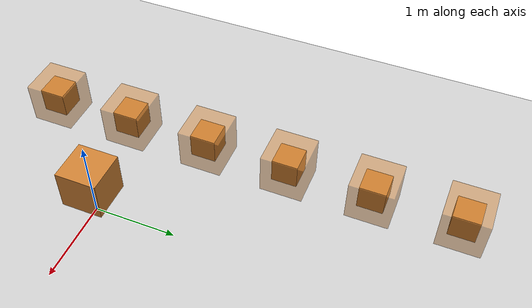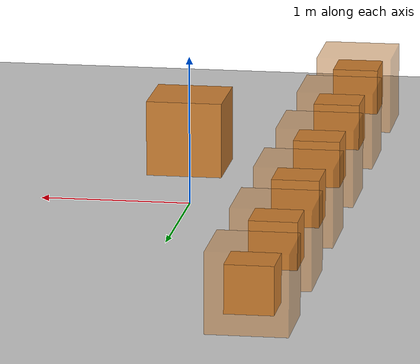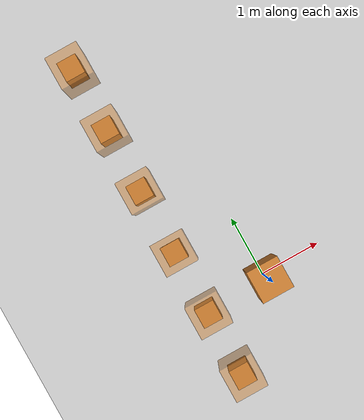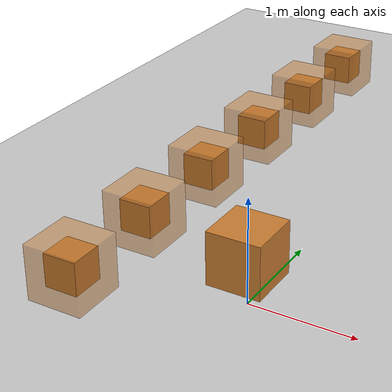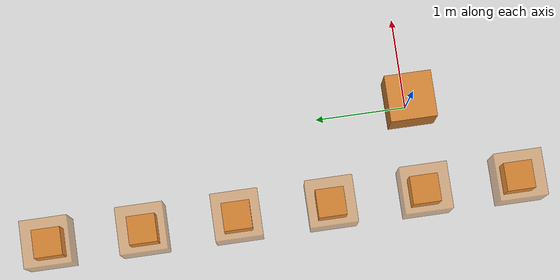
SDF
<?xml version="1.0" ?>
<sdf version="1.9">
  <world name="poke_test">
    <physics name="fast" type="dart">
      <max_step_size>0.002</max_step_size>
      <real_time_factor>0</real_time_factor>
      <dart>
        <collision_detector>
          fcl
        </collision_detector>
      </dart>
    </physics>
    <plugin filename="gz-sim-physics-system" name="gz::sim::systems::Physics">
    </plugin>
    <plugin filename="gz-sim-sensors-system"
      name="gz::sim::systems::Sensors">
      <render_engine>ogre2</render_engine>
    </plugin>
    <plugin filename="gz-sim-scene-broadcaster-system" name="gz::sim::systems::SceneBroadcaster" />
    <plugin filename="gz-sim-user-commands-system" name="gz::sim::systems::UserCommands"/>
    <plugin filename="gz-sim-contact-system" name="gz::sim::systems::Contact"/>
    <plugin filename="gz-sim-forcetorque-system" name="gz::sim::systems::ForceTorque" />
    <plugin filename="gz-sim-imu-system" name="gz::sim::systems::Imu"/>
    <model name="ground_plane">
      <static>true</static>
      <link name="link">
        <collision name="collision">
          <geometry>
            <plane>
              <normal>0 0 1</normal>
              <size>100 100</size>
            </plane>
          </geometry>
        </collision>
        <visual name="visual">
          <geometry>
            <plane>
              <normal>0 0 1</normal>
              <size>100 100</size>
            </plane>
          </geometry>
          <material>
            <ambient>0.8 0.8 0.8 1</ambient>
            <diffuse>0.8 0.8 0.8 1</diffuse>
            <specular>0.8 0.8 0.8 1</specular>
            <emissive>0.8 0.8 0.8 1</emissive>
          </material>
        </visual>
      </link>
    </model>
    <light type="directional" name="sun">
      <cast_shadows>true</cast_shadows>
      <pose>0 0 10 0 0 0</pose>
      <diffuse>1 1 1 1</diffuse>
      <specular>0.5 0.5 0.5 1</specular>
      <attenuation>
        <range>1000</range>
        <constant>0.9</constant>
        <linear>0.01</linear>
        <quadratic>0.001</quadratic>
      </attenuation>
      <direction>-0.5 0.1 -0.9</direction>
    </light>

    <model name="soft_box">
      <pose>-1 -1 0.6 0 0 0</pose>
      <link name="base">
        <soft_body>true</soft_body>
        <inertial>
          <mass>12.0</mass>
          <inertia>
            <ixx>0.520833333</ixx>
            <iyy>0.520833333</iyy>
            <izz>0.520833333</izz>
          </inertia>
        </inertial>
        <visual name="surface">
          <geometry>
            <box>
              <size>0.5 0.5 0.5</size>
            </box>
          </geometry>
          <material>
            <ambient>0.8 0.5 0.2 0.5</ambient>
            <diffuse>0.8 0.5 0.2 0.5</diffuse>
            <specular>0.8 0.5 0.2 0.5</specular>
          </material>
        </visual>
        <visual name="inner_bone">
          <geometry>
            <box>
              <size>0.3 0.3 0.3</size>
            </box>
          </geometry>
          <material>
            <ambient>0.8 0.5 0.2 1</ambient>
            <diffuse>0.8 0.5 0.2 1</diffuse>
            <specular>0.8 0.5 0.2 1</specular>
          </material>
        </visual>
        <collision name="surface">
          <geometry>
            <box>
              <size>0.5 0.5 0.5</size>
            </box>
          </geometry>
          <surface>
            <soft_contact>
              <flesh_mass_fraction>0.9</flesh_mass_fraction>
							<bone_attachment>1000</bone_attachment>
							<stiffness>1</stiffness>
							<damping>5</damping>
            </soft_contact>
          </surface>
        </collision>
      </link>
    </model>

    <model name="soft_box1">
      <pose>-1 0 0.6 0 0 0</pose>
      <link name="base">
        <soft_body>true</soft_body>
        <inertial>
          <mass>12.0</mass>
          <inertia>
            <ixx>0.520833333</ixx>
            <iyy>0.520833333</iyy>
            <izz>0.520833333</izz>
          </inertia>
        </inertial>
        <visual name="surface">
          <geometry>
            <box>
              <size>0.5 0.5 0.5</size>
            </box>
          </geometry>
          <material>
            <ambient>0.8 0.5 0.2 0.5</ambient>
            <diffuse>0.8 0.5 0.2 0.5</diffuse>
            <specular>0.8 0.5 0.2 0.5</specular>
          </material>
        </visual>
        <visual name="inner_bone">
          <geometry>
            <box>
              <size>0.3 0.3 0.3</size>
            </box>
          </geometry>
          <material>
            <ambient>0.8 0.5 0.2 1</ambient>
            <diffuse>0.8 0.5 0.2 1</diffuse>
            <specular>0.8 0.5 0.2 1</specular>
          </material>
        </visual>
        <collision name="surface">
          <geometry>
            <box>
              <size>0.5 0.5 0.5</size>
            </box>
          </geometry>
          <surface>
            <soft_contact>
              <flesh_mass_fraction>0.25</flesh_mass_fraction>
							<bone_attachment>1000</bone_attachment>
							<stiffness>1</stiffness>
							<damping>5</damping>
            </soft_contact>
          </surface>
        </collision>
      </link>
    </model>

        <model name="soft_box2">
      <pose>-1 1 0.6 0 0 0</pose>
      <link name="base">
        <soft_body>true</soft_body>
        <inertial>
          <mass>12.0</mass>
          <inertia>
            <ixx>0.520833333</ixx>
            <iyy>0.520833333</iyy>
            <izz>0.520833333</izz>
          </inertia>
        </inertial>
        <visual name="surface">
          <geometry>
            <box>
              <size>0.5 0.5 0.5</size>
            </box>
          </geometry>
          <material>
            <ambient>0.8 0.5 0.2 0.5</ambient>
            <diffuse>0.8 0.5 0.2 0.5</diffuse>
            <specular>0.8 0.5 0.2 0.5</specular>
          </material>
        </visual>
        <visual name="inner_bone">
          <geometry>
            <box>
              <size>0.3 0.3 0.3</size>
            </box>
          </geometry>
          <material>
            <ambient>0.8 0.5 0.2 1</ambient>
            <diffuse>0.8 0.5 0.2 1</diffuse>
            <specular>0.8 0.5 0.2 1</specular>
          </material>
        </visual>
        <collision name="surface">
          <geometry>
            <box>
              <size>0.5 0.5 0.5</size>
            </box>
          </geometry>
          <surface>
            <soft_contact>
              <flesh_mass_fraction>0.2</flesh_mass_fraction>
							<bone_attachment>1000</bone_attachment>
							<stiffness>1</stiffness>
							<damping>5</damping>
            </soft_contact>
          </surface>
        </collision>
      </link>
    </model>

        <model name="soft_box3">
      <pose>-1 2 0.6 0 0 0</pose>
      <link name="base">
        <soft_body>true</soft_body>
        <inertial>
          <mass>12.0</mass>
          <inertia>
            <ixx>0.520833333</ixx>
            <iyy>0.520833333</iyy>
            <izz>0.520833333</izz>
          </inertia>
        </inertial>
        <visual name="surface">
          <geometry>
            <box>
              <size>0.5 0.5 0.5</size>
            </box>
          </geometry>
          <material>
            <ambient>0.8 0.5 0.2 0.5</ambient>
            <diffuse>0.8 0.5 0.2 0.5</diffuse>
            <specular>0.8 0.5 0.2 0.5</specular>
          </material>
        </visual>
        <visual name="inner_bone">
          <geometry>
            <box>
              <size>0.3 0.3 0.3</size>
            </box>
          </geometry>
          <material>
            <ambient>0.8 0.5 0.2 1</ambient>
            <diffuse>0.8 0.5 0.2 1</diffuse>
            <specular>0.8 0.5 0.2 1</specular>
          </material>
        </visual>
        <collision name="surface">
          <geometry>
            <box>
              <size>0.5 0.5 0.5</size>
            </box>
          </geometry>
          <surface>
            <soft_contact>
              <flesh_mass_fraction>0.15</flesh_mass_fraction>
							<bone_attachment>1000</bone_attachment>
							<stiffness>1</stiffness>
							<damping>5</damping>
            </soft_contact>
          </surface>
        </collision>
      </link>
    </model>

        <model name="soft_box4">
      <pose>-1 3 0.6 0 0 0</pose>
      <link name="base">
        <soft_body>true</soft_body>
        <inertial>
          <mass>12.0</mass>
          <inertia>
            <ixx>0.520833333</ixx>
            <iyy>0.520833333</iyy>
            <izz>0.520833333</izz>
          </inertia>
        </inertial>
        <visual name="surface">
          <geometry>
            <box>
              <size>0.5 0.5 0.5</size>
            </box>
          </geometry>
          <material>
            <ambient>0.8 0.5 0.2 0.5</ambient>
            <diffuse>0.8 0.5 0.2 0.5</diffuse>
            <specular>0.8 0.5 0.2 0.5</specular>
          </material>
        </visual>
        <visual name="inner_bone">
          <geometry>
            <box>
              <size>0.3 0.3 0.3</size>
            </box>
          </geometry>
          <material>
            <ambient>0.8 0.5 0.2 1</ambient>
            <diffuse>0.8 0.5 0.2 1</diffuse>
            <specular>0.8 0.5 0.2 1</specular>
          </material>
        </visual>
        <collision name="surface">
          <geometry>
            <box>
              <size>0.5 0.5 0.5</size>
            </box>
          </geometry>
          <surface>
            <soft_contact>
              <flesh_mass_fraction>0.1</flesh_mass_fraction>
							<bone_attachment>1000</bone_attachment>
							<stiffness>1</stiffness>
							<damping>5</damping>
            </soft_contact>
          </surface>
        </collision>
      </link>
    </model>

        <model name="soft_box5">
      <pose>-1 4 0.6 0 0 0</pose>
      <link name="base">
        <soft_body>true</soft_body>
        <inertial>
          <mass>12.0</mass>
          <inertia>
            <ixx>0.520833333</ixx>
            <iyy>0.520833333</iyy>
            <izz>0.520833333</izz>
          </inertia>
        </inertial>
        <visual name="surface">
          <geometry>
            <box>
              <size>0.5 0.5 0.5</size>
            </box>
          </geometry>
          <material>
            <ambient>0.8 0.5 0.2 0.5</ambient>
            <diffuse>0.8 0.5 0.2 0.5</diffuse>
            <specular>0.8 0.5 0.2 0.5</specular>
          </material>
        </visual>
        <visual name="inner_bone">
          <geometry>
            <box>
              <size>0.3 0.3 0.3</size>
            </box>
          </geometry>
          <material>
            <ambient>0.8 0.5 0.2 1</ambient>
            <diffuse>0.8 0.5 0.2 1</diffuse>
            <specular>0.8 0.5 0.2 1</specular>
          </material>
        </visual>
        <collision name="surface">
          <geometry>
            <box>
              <size>0.5 0.5 0.5</size>
            </box>
          </geometry>
          <surface>
            <soft_contact>
              <flesh_mass_fraction>0.05</flesh_mass_fraction>
							<bone_attachment>1000</bone_attachment>
							<stiffness>1</stiffness>
							<damping>5</damping>
            </soft_contact>
          </surface>
        </collision>
      </link>
    </model>
     <model name="rigid_box">
      <static>false</static>
      <pose>0 0 0.5 0 0 0</pose>
      <link name="base">
        <inertial>
          <mass>12.0</mass>
          <inertia>
            <ixx>0.520833333</ixx>
            <iyy>0.520833333</iyy>
            <izz>0.520833333</izz>
          </inertia>
        </inertial>
        <visual name="surface">
          <geometry>
            <box>
              <size>0.5 0.5 0.5</size>
            </box>
          </geometry>
          <material>
            <ambient>0.8 0.5 0.2 1</ambient>
            <diffuse>0.8 0.5 0.2 1</diffuse>
            <specular>0.8 0.5 0.2 1</specular>
          </material>
        </visual>
        <collision name="surface">
          <geometry>
            <box>
              <size>0.5 0.5 0.5</size>
            </box>
          </geometry>
        </collision>
      </link>
    </model>
  </world>
</sdf>
